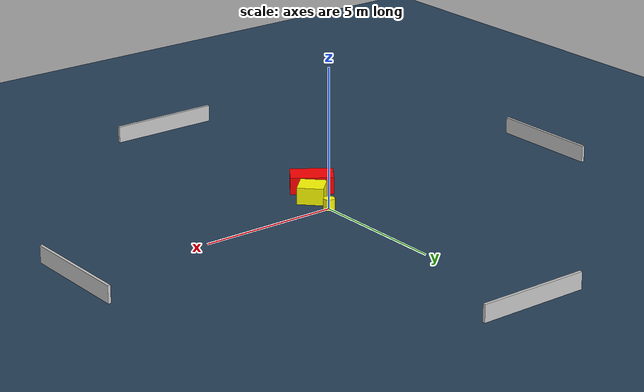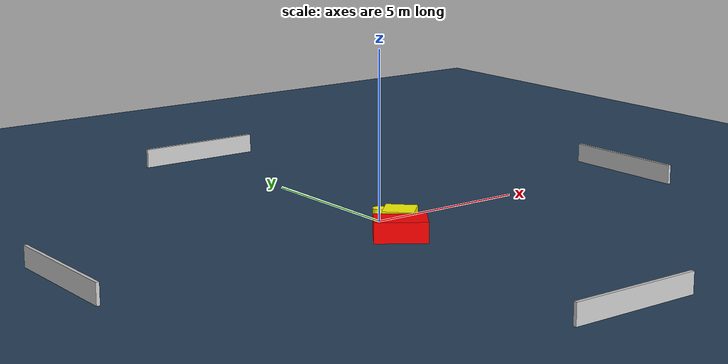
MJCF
<?xml version="1.0" ?>
<mujoco model="generated_environment">
  <option timestep="0.01" integrator="RK4" cone="elliptic"/>
  <default>
    <geom density="1"/>
  </default>
  <asset>
    <texture builtin="gradient" height="3072" name="skybox" rgb1="0.3 0.5 0.7" rgb2="0 0 0" type="skybox" width="512"/>
    <texture builtin="checker" height="300" name="groundplane" rgb1="0.2 0.3 0.4" rgb2="0.1 0.2 0.3" type="2d" width="300"/>
    <material name="groundplane" reflectance="0.2" texrepeat="5 5" texture="groundplane"/>
  </asset>
  <worldbody>
    <light dir="0 0 -1" directional="true" pos="0 0 1.5"/>
    <geom condim="3" friction="0.5 0.005 0.001" material="groundplane" name="floor" pos="0 0 0" size="0 0 0.05" type="plane"/>
    <body name="walls">
      <geom name="wall_1" condim="4" pos="-10.0 0.0 0.3" rgba="0.800000011920929 0.800000011920929 0.800000011920929 1.0" size="0.05 2.0 0.3" type="box"/>
      <geom name="wall_2" condim="4" pos="10.0 0.0 0.3" rgba="0.800000011920929 0.800000011920929 0.800000011920929 1.0" size="0.05 2.0 0.3" type="box"/>
      <geom name="wall_3" condim="4" pos="0.0 -10.0 0.3" rgba="0.800000011920929 0.800000011920929 0.800000011920929 1.0" size="2.0 0.05 0.3" type="box"/>
      <geom name="wall_4" condim="4" pos="0.0 10.0 0.3" rgba="0.800000011920929 0.800000011920929 0.800000011920929 1.0" size="2.0 0.05 0.3" type="box"/>
    </body>
    <body name="robot">
      <joint name="joint_x" type="slide" pos="0 0 0" axis="1 0 0"/>
      <joint name="joint_y" type="slide" pos="0 0 0" axis="0 1 0"/>
      <geom name="robot" type="cylinder" pos="0.0 0.0 0.2" size="0.2 0.2 0.0" mass="5.0" friction="1.0 0.005 0.0001" condim="4" rgba="1.0 1.0 0.0 1.0"/>
    </body>
    <body name="obstacle_1_movable">
      <geom name="obstacle_1_movable" condim="4" pos="-0.031840453279047484 -0.9904811471315774 0.3" euler="0 0 223.94292169510516" friction="0.0 0.005 0.001" rgba="1.0 1.0 0.0 1.0" size="0.4480940524612774 0.4589698101102109 0.3" type="box" mass="0.1"/>
      <joint type="free"/>
    </body>
    <body name="obstacle_2_static">
      <geom name="obstacle_2_static" condim="4" pos="-0.659642932105349 -1.8233571292725708 0.3" euler="0 0 324.47124734034094" friction="0.0 0.005 0.001" rgba="1.0 0.0 0.0 1.0" size="0.7542946118021168 0.47204021222990694 0.3" type="box"/>
    </body>
  </worldbody>
  <actuator>
    <motor name="actuator_x" joint="joint_x" gear="1" ctrlrange="-1 1"/>
    <motor name="actuator_y" joint="joint_y" gear="1" ctrlrange="-1 1"/>
  </actuator>
</mujoco>
